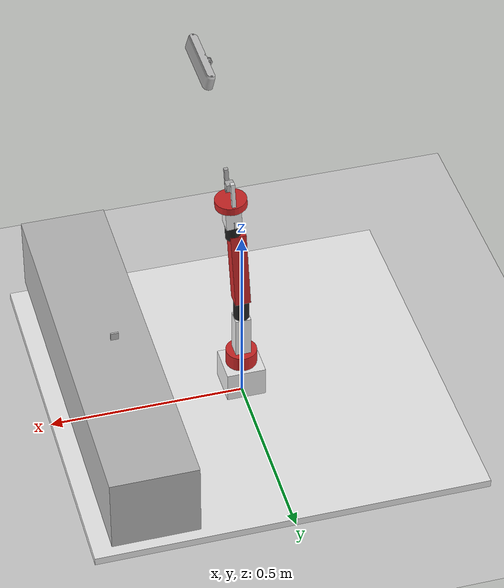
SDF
<sdf version="1.4">
 <world name="default">
  <light name="sun" type="directional">
   <pose>0 0 10 0 -0 0</pose>
   <diffuse>0.8 0.8 0.8 1</diffuse>
   <specular>0.2 0.2 0.2 1</specular>
   <attenuation>
    <range>1000</range>
    <constant>0.9</constant>
    <linear>0.01</linear>
    <quadratic>0.001</quadratic>
   </attenuation>
   <direction>-0.5 0.1 -0.9</direction>
  </light>
  <model name="ground_plane">
   <static>1</static>
   <link name="link">
    <collision name="collision">
     <geometry><plane><normal>0 0 1</normal><size>100 100</size></plane></geometry>
     <surface><friction><ode><mu>100</mu><mu2>50</mu2></ode></friction></surface>
    </collision>
    <visual name="visual">
     <cast_shadows>0</cast_shadows>
     <geometry><plane><normal>0 0 1</normal><size>100 100</size></plane></geometry>
     <material>
      <script><uri>file://media/materials/scripts/gazebo.material</uri><name>Gazebo/Grey</name></script>
     </material>
    </visual>
    <velocity_decay><linear>0</linear><angular>0</angular></velocity_decay>
   </link>
  </model>
  <physics type="ode">
   <max_step_size>0.001</max_step_size>
   <real_time_factor>1</real_time_factor>
   <real_time_update_rate>1000</real_time_update_rate>
   <gravity>0 0 -9.8</gravity>
  </physics>
  <scene><ambient>0.4 0.4 0.4 1</ambient><background>0.7 0.7 0.7 1</background><shadows>1</shadows></scene>
  <spherical_coordinates>
   <surface_model>EARTH_WGS84</surface_model>
   <latitude_deg>0</latitude_deg>
   <longitude_deg>0</longitude_deg>
   <elevation>0</elevation>
   <heading_deg>0</heading_deg>
  </spherical_coordinates>
  <model name="seven_dof_arm">
   <link name="base_link">
    <inertial>
     <pose>0.0174397 0.000110565 0.184969 0 -0 0</pose>
     <mass>1.2247</mass>
     <inertia>
      <ixx>1.18654</ixx>
      <ixy>-1.12128e-05</ixy>
      <ixz>-0.0175817</ixz>
      <iyy>100.188</iyy>
      <iyz>-0.000110308</iyz>
      <izz>1.00172</izz>
     </inertia>
    </inertial>
    <collision name="base_link_collision">
     <pose>0 0 0 1.57079 -0 0</pose>
     <geometry><box><size>0.1 0.1 0.1</size></box></geometry>
    </collision>
    <collision name="base_link_collision_bottom_link">
     <pose>0 0 -0.04 0 -0 0</pose>
     <geometry><box><size>1 1 0.02</size></box></geometry>
    </collision>
    <visual name="base_link_visual">
     <pose>0 0 0 1.57079 -0 0</pose>
     <geometry><box><size>0.1 0.1 0.1</size></box></geometry>
     <material><script><name>Gazebo/White</name><uri>__default__</uri></script></material>
    </visual>
    <visual name="base_link_visual_bottom_link">
     <pose>0 0 -0.04 0 -0 0</pose>
     <geometry><box><size>1 1 0.02</size></box></geometry>
     <material><script><name>Gazebo/White</name><uri>__default__</uri></script></material>
    </visual>
    <visual name="base_link_visual_rgbd_camera_link">
     <pose>0.1 0 1 0 1.309 0</pose>
     <geometry>
      <mesh>
       <scale>1 1 1</scale>
       <uri>/home/robot/catkin_ws/src/mastering_ros_robot_description_pkg/meshes/sensors/xtion_pro_live/xtion_pro_live.dae</uri>
      </mesh>
     </geometry>
    </visual>
    <velocity_decay><linear>0</linear><angular>0</angular></velocity_decay>
    <velocity_decay><linear>0</linear><angular>0</angular></velocity_decay>
    <velocity_decay><linear>0</linear><angular>0</angular></velocity_decay>
    <sensor name="rgbd_camera_frame_sensor" type="depth">
     <always_on>1</always_on>
     <update_rate>6</update_rate>
     <camera name="__default__">
      <horizontal_fov>1.01229</horizontal_fov>
      <image><format>R8G8B8</format><width>320</width><height>240</height></image>
      <clip><near>0.05</near><far>4</far></clip>
     </camera>
     <plugin name="rgbd_camera_frame_controller" filename="libgazebo_ros_openni_kinect.so">
      <alwaysOn>true</alwaysOn>
      <updateRate>6.0</updateRate>
      <cameraName>rgbd_camera</cameraName>
      <imageTopicName>ir/image_raw</imageTopicName>
      <cameraInfoTopicName>ir/camera_info</cameraInfoTopicName>
      <depthImageTopicName>depth/image_raw</depthImageTopicName>
      <depthImageCameraInfoTopicName>depth/camera_info</depthImageCameraInfoTopicName>
      <pointCloudTopicName>depth/points</pointCloudTopicName>
      <frameName>rgbd_camera_optical_frame</frameName>
      <pointCloudCutoff>0.05</pointCloudCutoff>
      <pointCloudCutoffMax>5</pointCloudCutoffMax>
      <rangeMax>4.0</rangeMax>
      <robotNamespace>/</robotNamespace>
     </plugin>
     <pose>0.1 0 1 0 1.309 0</pose>
    </sensor>
    <sensor name="rgbd_camera_frame_sensor" type="depth">
     <always_on>1</always_on>
     <update_rate>6</update_rate>
     <camera name="__default__">
      <horizontal_fov>1.01229</horizontal_fov>
      <image><format>R8G8B8</format><width>320</width><height>240</height></image>
      <clip><near>0.05</near><far>4</far></clip>
     </camera>
     <plugin name="rgbd_camera_frame_controller" filename="libgazebo_ros_openni_kinect.so">
      <alwaysOn>true</alwaysOn>
      <updateRate>6.0</updateRate>
      <cameraName>rgbd_camera</cameraName>
      <imageTopicName>rgb/image_raw</imageTopicName>
      <cameraInfoTopicName>rgb/camera_info</cameraInfoTopicName>
      <pointCloudTopicName>rgb/points</pointCloudTopicName>
      <depthImageTopicName>depth/image_raw</depthImageTopicName>
      <depthImageCameraInfoTopicName>depth/camera_info</depthImageCameraInfoTopicName>
      <frameName>rgbd_camera_optical_frame</frameName>
      <pointCloudCutoff>0.05</pointCloudCutoff>
      <pointCloudCutoffMax>5</pointCloudCutoffMax>
      <rangeMax>4.0</rangeMax>
      <robotNamespace>/</robotNamespace>
     </plugin>
     <pose>0.1 0 1 0 1.309 0</pose>
    </sensor>
   </link>
   <link name="shoulder_pan_link">
    <pose>0 0 0.05 3.14159 1.57079 3.14159</pose>
    <inertial>
     <mass>1</mass>
     <inertia><ixx>1</ixx><ixy>0</ixy><ixz>0</ixz><iyy>100</iyy><iyz>0</iyz><izz>1</izz></inertia>
    </inertial>
    <collision name="shoulder_pan_link_collision">
     <pose>0 0 0 3.14159 1.57079 3.14159</pose>
     <geometry><cylinder><length>0.08</length><radius>0.04</radius></cylinder></geometry>
    </collision>
    <visual name="shoulder_pan_link_visual">
     <pose>0 0 0 3.14159 1.57079 3.14159</pose>
     <geometry><cylinder><length>0.08</length><radius>0.04</radius></cylinder></geometry>
     <material><script><name>Gazebo/Red</name><uri>__default__</uri></script></material>
    </visual>
    <velocity_decay><linear>0</linear><angular>0</angular></velocity_decay>
   </link>
   <joint name="shoulder_pan_joint" type="revolute">
    <child>shoulder_pan_link</child>
    <parent>base_link</parent>
    <axis>
     <xyz>-1e-06 0 1</xyz>
     <limit><lower>-2.61799</lower><upper>1.98395</upper><effort>300</effort><velocity>1</velocity></limit>
     <dynamics><damping>50</damping></dynamics>
    </axis>
   </joint>
   <link name="shoulder_pitch_link">
    <pose>-5.43986e-08 0.0021 0.091 -7.96722e-17 1.32679e-06 1.5708</pose>
    <inertial>
     <pose>-0.002 0 -0 0 -0 0</pose>
     <mass>1</mass>
     <inertia><ixx>1</ixx><ixy>0</ixy><ixz>0</ixz><iyy>100</iyy><iyz>0</iyz><izz>1</izz></inertia>
    </inertial>
    <collision name="shoulder_pitch_link_collision">
     <pose>-0.002 0 0.04 3.14159 1.57079 3.14159</pose>
     <geometry><box><size>0.14 0.04 0.04</size></box></geometry>
    </collision>
    <visual name="shoulder_pitch_link_visual">
     <pose>-0.002 0 0.04 3.14159 1.57079 3.14159</pose>
     <geometry><box><size>0.14 0.04 0.04</size></box></geometry>
     <material><script><name>Gazebo/White</name><uri>__default__</uri></script></material>
    </visual>
    <velocity_decay><linear>0</linear><angular>0</angular></velocity_decay>
   </link>
   <joint name="shoulder_pitch_joint" type="revolute">
    <child>shoulder_pitch_link</child>
    <parent>shoulder_pan_link</parent>
    <axis>
     <xyz>0 1 -1e-06</xyz>
     <limit><lower>-1.19963</lower><upper>1.89994</upper><effort>300</effort><velocity>1</velocity></limit>
     <dynamics><damping>50</damping></dynamics>
    </axis>
   </joint>
   <link name="elbow_roll_link">
    <pose>-5.43986e-08 0.00010016 0.2116 -0.785403 1.57079 -1.57079</pose>
    <inertial>
     <pose>-0.035 0 0 0 -0 0</pose>
     <mass>1</mass>
     <inertia><ixx>1</ixx><ixy>0</ixy><ixz>0</ixz><iyy>100</iyy><iyz>0</iyz><izz>1</izz></inertia>
    </inertial>
    <collision name="elbow_roll_link_collision">
     <pose>-0.015 0 -0 3.14159 1.57079 3.14159</pose>
     <geometry><cylinder><length>0.06</length><radius>0.02</radius></cylinder></geometry>
    </collision>
    <visual name="elbow_roll_link_visual">
     <pose>-0.015 0 -0 3.14159 1.57079 3.14159</pose>
     <geometry><cylinder><length>0.06</length><radius>0.02</radius></cylinder></geometry>
     <material><script><name>Gazebo/Black</name><uri>__default__</uri></script></material>
    </visual>
    <velocity_decay><linear>0</linear><angular>0</angular></velocity_decay>
   </link>
   <joint name="elbow_roll_joint" type="revolute">
    <child>elbow_roll_link</child>
    <parent>shoulder_pitch_link</parent>
    <axis>
     <xyz>-0 -0 1</xyz>
     <limit><lower>-2.61799</lower><upper>0.705631</upper><effort>300</effort><velocity>1</velocity></limit>
     <dynamics><damping>50</damping></dynamics>
    </axis>
   </joint>
   <link name="elbow_pitch_link">
    <pose>-5.43986e-08 0.00010016 0.2466 -3.08659 1.32679e-06 1.5708</pose>
    <inertial>
     <mass>1</mass>
     <inertia><ixx>1</ixx><ixy>0</ixy><ixz>0</ixz><iyy>100</iyy><iyz>0</iyz><izz>1</izz></inertia>
    </inertial>
    <collision name="elbow_pitch_link_collision">
     <pose>0 0 -0.12 3.14159 1.57079 3.14159</pose>
     <geometry><box><size>0.22 0.04 0.04</size></box></geometry>
    </collision>
    <visual name="elbow_pitch_link_visual">
     <pose>0 0 -0.12 3.14159 1.57079 3.14159</pose>
     <geometry><box><size>0.22 0.04 0.04</size></box></geometry>
     <material><script><name>Gazebo/Red</name><uri>__default__</uri></script></material>
    </visual>
    <velocity_decay><linear>0</linear><angular>0</angular></velocity_decay>
   </link>
   <joint name="elbow_pitch_joint" type="revolute">
    <child>elbow_pitch_link</child>
    <parent>elbow_roll_link</parent>
    <axis>
     <xyz>-3e-06 1 -1e-06</xyz>
     <limit><lower>-1.59534</lower><upper>1.93282</upper><effort>300</effort><velocity>1</velocity></limit>
     <dynamics><damping>50</damping></dynamics>
    </axis>
   </joint>
   <link name="wrist_roll_link">
    <pose>0.0217208 0.000100546 0.49378 1.5708 -1.5158 2.61709e-06</pose>
    <inertial>
     <mass>1</mass>
     <inertia><ixx>1</ixx><ixy>0</ixy><ixz>0</ixz><iyy>100</iyy><iyz>0</iyz><izz>1</izz></inertia>
    </inertial>
    <collision name="wrist_roll_link_collision">
     <pose>0 0 0 3.14159 1.57079 3.14159</pose>
     <geometry><cylinder><length>0.06</length><radius>0.02</radius></cylinder></geometry>
    </collision>
    <visual name="wrist_roll_link_visual">
     <pose>0 0 0 3.14159 1.57079 3.14159</pose>
     <geometry><cylinder><length>0.06</length><radius>0.02</radius></cylinder></geometry>
     <material><script><name>Gazebo/Black</name><uri>__default__</uri></script></material>
    </visual>
    <velocity_decay><linear>0</linear><angular>0</angular></velocity_decay>
   </link>
   <joint name="wrist_roll_joint" type="revolute">
    <child>wrist_roll_link</child>
    <parent>elbow_pitch_link</parent>
    <axis>
     <xyz>0.054972 0 0.998488</xyz>
     <limit><lower>-2.61799</lower><upper>2.61288</upper><effort>300</effort><velocity>1</velocity></limit>
     <dynamics><damping>50</damping></dynamics>
    </axis>
   </joint>
   <link name="wrist_pitch_link">
    <pose>0.0217208 5.45607e-07 0.49378 0.055 -1.46866e-06 1.5708</pose>
    <inertial>
     <mass>1</mass>
     <inertia><ixx>1</ixx><ixy>0</ixy><ixz>0</ixz><iyy>100</iyy><iyz>0</iyz><izz>1</izz></inertia>
    </inertial>
    <collision name="wrist_pitch_link_collision">
     <pose>0 0 0.04 3.14159 1.57079 3.14159</pose>
     <geometry><box><size>0.06 0.04 0.04</size></box></geometry>
    </collision>
    <visual name="wrist_pitch_link_visual">
     <pose>0 0 0.04 3.14159 1.57079 3.14159</pose>
     <geometry><box><size>0.06 0.04 0.04</size></box></geometry>
     <material><script><name>Gazebo/White</name><uri>__default__</uri></script></material>
    </visual>
    <velocity_decay><linear>0</linear><angular>0</angular></velocity_decay>
   </link>
   <joint name="wrist_pitch_joint" type="revolute">
    <child>wrist_pitch_link</child>
    <parent>wrist_roll_link</parent>
    <axis>
     <xyz>-5e-06 1 1e-06</xyz>
     <limit><lower>-1.59534</lower><upper>1.98395</upper><effort>300</effort><velocity>1</velocity></limit>
     <dynamics><damping>50</damping></dynamics>
    </axis>
   </joint>
   <link name="gripper_roll_link">
    <pose>0.0261186 4.50972e-07 0.573659 -1.36329e-06 -1.5158 2.61709e-06</pose>
    <inertial>
     <pose>4.9995e-06 0 0 0 -0 0</pose>
     <mass>1.0001</mass>
     <inertia><ixx>2</ixx><ixy>0</ixy><ixz>0</ixz><iyy>200</iyy><iyz>0</iyz><izz>2</izz></inertia>
    </inertial>
    <collision name="gripper_roll_link_collision">
     <pose>0 0 0 3.14159 1.57079 3.14159</pose>
     <geometry><cylinder><length>0.02</length><radius>0.04</radius></cylinder></geometry>
    </collision>
    <visual name="gripper_roll_link_visual">
     <pose>0 0 0 3.14159 1.57079 3.14159</pose>
     <geometry><cylinder><length>0.02</length><radius>0.04</radius></cylinder></geometry>
     <material><script><name>Gazebo/Red</name><uri>__default__</uri></script></material>
    </visual>
    <visual name="gripper_roll_link_visual_grasping_frame">
     <pose>0.05 0 0 0 -0 0</pose>
     <geometry><box><size>0.02 0.02 0.02</size></box></geometry>
    </visual>
    <velocity_decay><linear>0</linear><angular>0</angular></velocity_decay>
   </link>
   <joint name="gripper_roll_joint" type="revolute">
    <child>gripper_roll_link</child>
    <parent>wrist_pitch_link</parent>
    <axis>
     <xyz>0.054972 0 0.998488</xyz>
     <limit><lower>-2.61799</lower><upper>2.61288</upper><effort>300</effort><velocity>1</velocity></limit>
     <dynamics><damping>50</damping></dynamics>
    </axis>
   </joint>
   <link name="gripper_finger_link1">
    <pose>0.0261186 4.50972e-07 0.573659 -1.36329e-06 -1.5158 2.61709e-06</pose>
    <inertial>
     <mass>0.01</mass>
     <inertia><ixx>1</ixx><ixy>0</ixy><ixz>0</ixz><iyy>100</iyy><iyz>0</iyz><izz>1</izz></inertia>
    </inertial>
    <collision name="gripper_finger_link1_collision">
     <pose>0.04 -0.03 0 1.57079 -0 0</pose>
     <geometry><box><size>0.08 0.01 0.01</size></box></geometry>
    </collision>
    <visual name="gripper_finger_link1_visual">
     <pose>0.04 -0.03 0 1.57079 -0 0</pose>
     <geometry><box><size>0.08 0.01 0.01</size></box></geometry>
    </visual>
    <velocity_decay><linear>0</linear><angular>0</angular></velocity_decay>
   </link>
   <joint name="finger_joint1" type="prismatic">
    <child>gripper_finger_link1</child>
    <parent>gripper_roll_link</parent>
    <axis>
     <xyz>-1.25586e-06 1 -7.49432e-08</xyz>
     <limit><lower>0</lower><upper>0.03</upper><effort>100</effort><velocity>1</velocity></limit>
     <dynamics><damping>50</damping></dynamics>
    </axis>
   </joint>
   <link name="gripper_finger_link2">
    <pose>0.0261186 4.50972e-07 0.573659 -1.36329e-06 -1.5158 2.61709e-06</pose>
    <inertial>
     <mass>1</mass>
     <inertia><ixx>1</ixx><ixy>0</ixy><ixz>0</ixz><iyy>100</iyy><iyz>0</iyz><izz>1</izz></inertia>
    </inertial>
    <collision name="gripper_finger_link2_collision">
     <pose>0.04 0.03 0 1.57079 -0 0</pose>
     <geometry><box><size>0.08 0.01 0.01</size></box></geometry>
    </collision>
    <visual name="gripper_finger_link2_visual">
     <pose>0.04 0.03 0 1.57079 -0 0</pose>
     <geometry><box><size>0.08 0.01 0.01</size></box></geometry>
     <material><script><name>Gazebo/White</name><uri>__default__</uri></script></material>
    </visual>
    <velocity_decay><linear>0</linear><angular>0</angular></velocity_decay>
   </link>
   <joint name="finger_joint2" type="prismatic">
    <child>gripper_finger_link2</child>
    <parent>gripper_roll_link</parent>
    <axis>
     <xyz>-1.25586e-06 1 -7.49432e-08</xyz>
     <limit><lower>-0.03</lower><upper>0</upper><effort>1</effort><velocity>1</velocity></limit>
     <dynamics><damping>50</damping></dynamics>
    </axis>
   </joint>
   <static>0</static>
   <plugin name="gazebo_ros_control" filename="libgazebo_ros_control.so">
    <robotNamespace>/seven_dof_arm</robotNamespace>
   </plugin>
   <pose>0.001252 0.000923 0.049995 1e-06 -5.16988e-26 -0.000248</pose>
  </model>
  <model name="table">
   <static>1</static>
   <link name="link">
    <collision name="surface">
     <pose>0 0 0.15 0 -0 0</pose>
     <geometry><box><size>0.22 1 0.2</size></box></geometry>
     <surface><friction><ode><mu>0.1</mu><mu2>0.1</mu2></ode></friction></surface>
    </collision>
    <visual name="visual1">
     <pose>0 0 0.15 0 -0 0</pose>
     <geometry><box><size>0.22 1 0.2</size></box></geometry>
    </visual>
    <velocity_decay><linear>0</linear><angular>0</angular></velocity_decay>
   </link>
   <pose>0.348247 0 0 0 -0 0</pose>
  </model>
  <model name="object">
   <link name="link">
    <inertial>
     <pose>0 0 0.3 0 -0 0</pose>
     <mass>0.1</mass>
     <inertia><ixx>0.00058</ixx><ixy>0</ixy><ixz>0</ixz><iyy>0.00058</iyy><iyz>0</iyz><izz>0.00019</izz></inertia>
    </inertial>
    <collision name="object">
     <pose>0 0 0.3 0 -0 0</pose>
     <geometry><box><size>0.02 0.01 0.02</size></box></geometry>
     <surface>
      <friction><ode><mu>1</mu><mu2>1</mu2></ode></friction>
      <contact><ode><kp>1e+07</kp><kd>1</kd><min_depth>0.001</min_depth><max_vel>0.01</max_vel></ode></contact>
     </surface>
    </collision>
    <visual name="visual1">
     <pose>0 0 0.3 0 -0 0</pose>
     <geometry><box><size>0.02 0.005 0.02</size></box></geometry>
    </visual>
    <velocity_decay><linear>0</linear><angular>0</angular></velocity_decay>
   </link>
   <pose>0.32817 0.000623 -0.040294 0.002152 -0.004326 3.4e-05</pose>
   <static>0</static>
  </model>
 </world>
</sdf>
